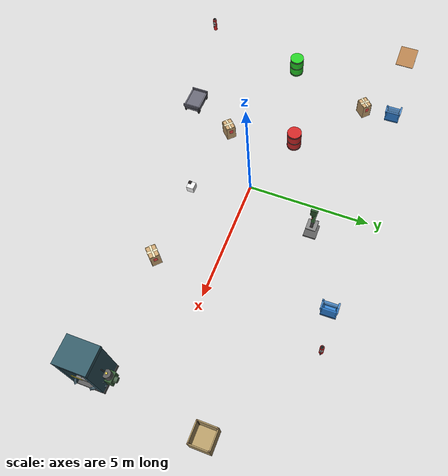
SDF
<sdf version="1.5">
 <world name="maiellomap">
  <physics name="default_physics" default="0" type="ode">
   <gravity>0 0 -9.8066</gravity>
   <ode>
    <solver>
     <type>quick</type>
     <iters>10</iters>
     <sor>1.3</sor>
     <use_dynamic_moi_rescaling>0</use_dynamic_moi_rescaling>
    </solver>
    <constraints>
     <cfm>0</cfm>
     <erp>0.2</erp>
     <contact_max_correcting_vel>100</contact_max_correcting_vel>
     <contact_surface_layer>0.001</contact_surface_layer>
    </constraints>
   </ode>
   <max_step_size>0.004</max_step_size>
   <real_time_factor>1</real_time_factor>
   <real_time_update_rate>250</real_time_update_rate>
   <magnetic_field>6.0e-6 2.3e-5 -4.2e-5</magnetic_field>
  </physics>
  <light type="directional" name="sun">
   <pose>0 0 10 0 0 0</pose>
   <diffuse>0.8 0.8 0.8 1</diffuse>
   <specular>0.2 0.2 0.2 1</specular>
   <attenuation>
    <range>1000</range>
    <constant>0.9</constant>
    <linear>0.01</linear>
    <quadratic>0.001</quadratic>
   </attenuation>
   <direction>-0.5 0.1 -0.9</direction>
  </light>
  <include><name>drill_press</name><pose>1.2 3 0.3 0 0 0</pose><uri>model://drill_press</uri></include>
  <include>
   <name>hydraulic_press</name>
   <pose>8.88 -2.3 0.2 0 0 -1.57</pose>
   <uri>model://hydraulic_press</uri>
  </include>
  <model name="aruco_cube">
   <static>false</static>
   <pose>1 -2.15 0.4 0 0 0</pose>
   <link name="cube_link">
    <inertial><mass>0.5</mass><inertia><ixx>0.01</ixx><iyy>0.01</iyy><izz>0.01</izz></inertia></inertial>
    <visual name="cube_visual">
     <geometry><box><size>0.3 0.3 0.3</size></box></geometry>
     <material>
      <diffuse>1 1 1 1</diffuse>
      <specular>0.4 0.4 0.4 1</specular>
      <pbr>
       <metal>
        <albedo_map>model://aruco_tag_1/aruco_tag_id10.png</albedo_map>
        <metalness>0.0</metalness>
        <roughness>0.8</roughness>
       </metal>
      </pbr>
     </material>
    </visual>
    <collision name="cube_collision"><geometry><box><size>0.3 0.3 0.3</size></box></geometry></collision>
   </link>
   <link name="button_base">
    <pose>-0.08 -0.08 0.18 0 0 0</pose>
    <inertial><mass>0.5</mass><inertia><ixx>0.001</ixx><iyy>0.001</iyy><izz>0.001</izz></inertia></inertial>
    <visual name="back_panel">
     <geometry><box><size>0.12 0.12 0.04</size></box></geometry>
     <material><ambient>0.25 0.25 0.25 1</ambient><diffuse>0.35 0.35 0.35 1</diffuse></material>
    </visual>
    <visual name="support_ring">
     <pose>0 0 0.03 0 0 0</pose>
     <geometry><cylinder><radius>0.045</radius><length>0.02</length></cylinder></geometry>
     <material><ambient>0.2 0.2 0.2 1</ambient><diffuse>0.3 0.3 0.3 1</diffuse></material>
    </visual>
    <collision name="base_collision"><geometry><box><size>0.12 0.12 0.04</size></box></geometry></collision>
   </link>
   <link name="button_top">
    <pose>-0.08 -0.08 0.235 0 0 0</pose>
    <inertial><mass>0.2</mass><inertia><ixx>0.0001</ixx><iyy>0.0001</iyy><izz>0.0001</izz></inertia></inertial>
    <visual name="button_head">
     <geometry><cylinder><radius>0.04</radius><length>0.025</length></cylinder></geometry>
     <material>
      <ambient>0.9 0.2 0.2 1</ambient>
      <diffuse>1.0 0.25 0.25 1</diffuse>
      <emissive>0.3 0.05 0.05 1</emissive>
     </material>
    </visual>
    <visual name="button_edge">
     <pose>0 0 0.013 0 0 0</pose>
     <geometry><cylinder><radius>0.041</radius><length>0.001</length></cylinder></geometry>
     <material><ambient>0.1 0.1 0.1 1</ambient><diffuse>0.15 0.15 0.15 1</diffuse></material>
    </visual>
    <collision name="button_collision">
     <geometry><cylinder><radius>0.04</radius><length>0.025</length></cylinder></geometry>
     <surface>
      <contact><ode><kp>100000</kp><kd>100</kd><max_vel>0.1</max_vel><min_depth>0.001</min_depth></ode></contact>
      <friction><ode><mu>0.8</mu><mu2>0.8</mu2></ode></friction>
     </surface>
    </collision>
    <sensor name="button_touch_sensor" type="contact">
     <contact><collision>button_collision</collision></contact>
     <update_rate>50</update_rate>
     <always_on>true</always_on>
    </sensor>
   </link>
   <link name="led">
    <pose>-0.025 -0.08 0.245 0 0 0</pose>
    <inertial>
     <mass>0.001</mass>
     <inertia><ixx>0.000001</ixx><iyy>0.000001</iyy><izz>0.000001</izz></inertia>
    </inertial>
    <visual name="led_visual">
     <geometry><sphere><radius>0.006</radius></sphere></geometry>
     <material>
      <ambient>0.1 0.1 0.1 1</ambient>
      <diffuse>0.2 0.2 0.2 1</diffuse>
      <emissive>0 0 0 1</emissive>
     </material>
    </visual>
   </link>
   <joint name="cube_to_button_base" type="fixed"><parent>cube_link</parent><child>button_base</child></joint>
   <joint name="button_joint" type="prismatic">
    <parent>button_base</parent>
    <child>button_top</child>
    <axis>
     <xyz>0 0 1</xyz>
     <limit><lower>0</lower><upper>0.012</upper><effort>150</effort><velocity>0.3</velocity></limit>
     <dynamics>
      <spring_reference>0.012</spring_reference>
      <spring_stiffness>800</spring_stiffness>
      <damping>30</damping>
     </dynamics>
    </axis>
    <physics><ode><cfm>0.0</cfm><erp>0.2</erp></ode></physics>
   </joint>
   <joint name="led_joint" type="fixed"><parent>button_base</parent><child>led</child></joint>
   <plugin filename="libgz-sim-joint-state-publisher-system.so" name="gz::sim::systems::JointStatePublisher">
    <joint_name>button_joint</joint_name>
    <topic>/aruco_cube_button/joint_states</topic>
    <update_rate>50</update_rate>
   </plugin>
  </model>
  <model name="industrial_pallet">
   <pose>-9 4.42 0.1 0 0 0</pose>
   <static>false</static>
   <link name="top_deck">
    <pose>0 0 0.065 0 0 0</pose>
    <inertial><mass>5.0</mass><inertia><ixx>0.5</ixx><iyy>0.5</iyy><izz>0.8</izz></inertia></inertial>
    <visual name="top_visual">
     <geometry><box><size>1.2 0.8 0.02</size></box></geometry>
     <material><ambient>0.6 0.4 0.2 1</ambient><diffuse>0.7 0.5 0.3 1</diffuse></material>
    </visual>
    <collision name="top_collision"><geometry><box><size>1.2 0.8 0.02</size></box></geometry></collision>
   </link>
   <link name="beam1">
    <pose>-0.4 0 0.03 0 0 0</pose>
    <inertial><mass>1.0</mass><inertia><ixx>0.05</ixx><iyy>0.05</iyy><izz>0.05</izz></inertia></inertial>
    <visual name="beam1_visual">
     <geometry><box><size>0.1 0.8 0.06</size></box></geometry>
     <material><ambient>0.5 0.35 0.15 1</ambient><diffuse>0.6 0.4 0.2 1</diffuse></material>
    </visual>
    <collision name="beam1_collision"><geometry><box><size>0.1 0.8 0.06</size></box></geometry></collision>
   </link>
   <link name="beam2">
    <pose>0 0 0.03 0 0 0</pose>
    <inertial><mass>1.0</mass><inertia><ixx>0.05</ixx><iyy>0.05</iyy><izz>0.05</izz></inertia></inertial>
    <visual name="beam2_visual">
     <geometry><box><size>0.1 0.8 0.06</size></box></geometry>
     <material><ambient>0.5 0.35 0.15 1</ambient><diffuse>0.6 0.4 0.2 1</diffuse></material>
    </visual>
    <collision name="beam2_collision"><geometry><box><size>0.1 0.8 0.06</size></box></geometry></collision>
   </link>
   <link name="beam3">
    <pose>0.4 0 0.03 0 0 0</pose>
    <inertial><mass>1.0</mass><inertia><ixx>0.05</ixx><iyy>0.05</iyy><izz>0.05</izz></inertia></inertial>
    <visual name="beam3_visual">
     <geometry><box><size>0.1 0.8 0.06</size></box></geometry>
     <material><ambient>0.5 0.35 0.15 1</ambient><diffuse>0.6 0.4 0.2 1</diffuse></material>
    </visual>
    <collision name="beam3_collision"><geometry><box><size>0.1 0.8 0.06</size></box></geometry></collision>
   </link>
   <joint name="beam1_to_top" type="fixed"><parent>top_deck</parent><child>beam1</child></joint>
   <joint name="beam2_to_top" type="fixed"><parent>top_deck</parent><child>beam2</child></joint>
   <joint name="beam3_to_top" type="fixed"><parent>top_deck</parent><child>beam3</child></joint>
  </model>
  <model name="industrial_barrel">
   <pose>-2.61 1.0 0.45 0 0 0</pose>
   <static>false</static>
   <link name="barrel_body">
    <inertial><mass>8.0</mass><inertia><ixx>0.5</ixx><iyy>0.5</iyy><izz>0.2</izz></inertia></inertial>
    <visual name="barrel_visual">
     <geometry><cylinder><radius>0.3</radius><length>0.9</length></cylinder></geometry>
     <material><ambient>0.7 0.1 0.1 1</ambient><diffuse>0.8 0.15 0.15 1</diffuse></material>
    </visual>
    <collision name="barrel_collision">
     <geometry><cylinder><radius>0.3</radius><length>0.9</length></cylinder></geometry>
     <surface><friction><ode><mu>1.0</mu><mu2>1.0</mu2></ode></friction></surface>
    </collision>
    <visual name="ring_top">
     <pose>0 0 0.38 0 0 0</pose>
     <geometry><cylinder><radius>0.305</radius><length>0.04</length></cylinder></geometry>
     <material><ambient>0.3 0.3 0.3 1</ambient><diffuse>0.4 0.4 0.4 1</diffuse></material>
    </visual>
    <visual name="ring_middle">
     <geometry><cylinder><radius>0.305</radius><length>0.04</length></cylinder></geometry>
     <material><ambient>0.3 0.3 0.3 1</ambient><diffuse>0.4 0.4 0.4 1</diffuse></material>
    </visual>
    <visual name="ring_bottom">
     <pose>0 0 -0.38 0 0 0</pose>
     <geometry><cylinder><radius>0.305</radius><length>0.04</length></cylinder></geometry>
     <material><ambient>0.3 0.3 0.3 1</ambient><diffuse>0.4 0.4 0.4 1</diffuse></material>
    </visual>
   </link>
  </model>
  <model name="industrial_barrel_2">
   <pose>-6.56 -0.21 0.45 0 0 0</pose>
   <static>false</static>
   <link name="barrel_body">
    <inertial><mass>8.0</mass><inertia><ixx>0.5</ixx><iyy>0.5</iyy><izz>0.2</izz></inertia></inertial>
    <visual name="barrel_visual">
     <geometry><cylinder><radius>0.3</radius><length>0.9</length></cylinder></geometry>
     <material><ambient>0.1 0.7 0.1 1</ambient><diffuse>0.15 0.8 0.15 1</diffuse></material>
    </visual>
    <collision name="barrel_collision">
     <geometry><cylinder><radius>0.3</radius><length>0.9</length></cylinder></geometry>
     <surface><friction><ode><mu>1.0</mu><mu2>1.0</mu2></ode></friction></surface>
    </collision>
    <visual name="ring_top">
     <pose>0 0 0.38 0 0 0</pose>
     <geometry><cylinder><radius>0.305</radius><length>0.04</length></cylinder></geometry>
     <material><ambient>0.3 0.3 0.3 1</ambient><diffuse>0.4 0.4 0.4 1</diffuse></material>
    </visual>
    <visual name="ring_middle">
     <geometry><cylinder><radius>0.305</radius><length>0.04</length></cylinder></geometry>
     <material><ambient>0.3 0.3 0.3 1</ambient><diffuse>0.4 0.4 0.4 1</diffuse></material>
    </visual>
    <visual name="ring_bottom">
     <pose>0 0 -0.38 0 0 0</pose>
     <geometry><cylinder><radius>0.305</radius><length>0.04</length></cylinder></geometry>
     <material><ambient>0.3 0.3 0.3 1</ambient><diffuse>0.4 0.4 0.4 1</diffuse></material>
    </visual>
   </link>
  </model>
  <model name="shipping_crate">
   <pose>9.54 2.04 0.4 0 0 3.14</pose>
   <static>false</static>
   <link name="crate_base">
    <inertial><mass>12.0</mass><inertia><ixx>1.2</ixx><iyy>1.2</iyy><izz>1.5</izz></inertia></inertial>
    <visual name="bottom_panel">
     <pose>0 0 -0.38 0 0 0</pose>
     <geometry><box><size>0.8 0.8 0.04</size></box></geometry>
     <material><ambient>0.6 0.5 0.3 1</ambient><diffuse>0.7 0.6 0.4 1</diffuse></material>
    </visual>
    <visual name="side1_panel">
     <pose>0.38 0 0 0 0 0</pose>
     <geometry><box><size>0.04 0.8 0.8</size></box></geometry>
     <material><ambient>0.6 0.5 0.3 1</ambient><diffuse>0.7 0.6 0.4 1</diffuse></material>
    </visual>
    <visual name="side2_panel">
     <pose>-0.38 0 0 0 0 0</pose>
     <geometry><box><size>0.04 0.8 0.8</size></box></geometry>
     <material><ambient>0.6 0.5 0.3 1</ambient><diffuse>0.7 0.6 0.4 1</diffuse></material>
    </visual>
    <visual name="side3_panel">
     <pose>0 0.38 0 0 0 0</pose>
     <geometry><box><size>0.8 0.04 0.8</size></box></geometry>
     <material><ambient>0.6 0.5 0.3 1</ambient><diffuse>0.7 0.6 0.4 1</diffuse></material>
    </visual>
    <visual name="side4_panel">
     <pose>0 -0.38 0 0 0 0</pose>
     <geometry><box><size>0.8 0.04 0.8</size></box></geometry>
     <material><ambient>0.6 0.5 0.3 1</ambient><diffuse>0.7 0.6 0.4 1</diffuse></material>
    </visual>
    <visual name="corner1">
     <pose>0.36 0.36 0 0 0 0</pose>
     <geometry><box><size>0.05 0.05 0.85</size></box></geometry>
     <material><ambient>0.4 0.3 0.2 1</ambient><diffuse>0.5 0.4 0.3 1</diffuse></material>
    </visual>
    <visual name="corner2">
     <pose>-0.36 0.36 0 0 0 0</pose>
     <geometry><box><size>0.05 0.05 0.85</size></box></geometry>
     <material><ambient>0.4 0.3 0.2 1</ambient><diffuse>0.5 0.4 0.3 1</diffuse></material>
    </visual>
    <visual name="corner3">
     <pose>0.36 -0.36 0 0 0 0</pose>
     <geometry><box><size>0.05 0.05 0.85</size></box></geometry>
     <material><ambient>0.4 0.3 0.2 1</ambient><diffuse>0.5 0.4 0.3 1</diffuse></material>
    </visual>
    <visual name="corner4">
     <pose>-0.36 -0.36 0 0 0 0</pose>
     <geometry><box><size>0.05 0.05 0.85</size></box></geometry>
     <material><ambient>0.4 0.3 0.2 1</ambient><diffuse>0.5 0.4 0.3 1</diffuse></material>
    </visual>
    <visual name="marking">
     <pose>0.39 0 0.1 0 1.5708 0</pose>
     <geometry><box><size>0.3 0.3 0.001</size></box></geometry>
     <material><ambient>0.1 0.1 0.1 1</ambient><diffuse>0.2 0.2 0.2 1</diffuse></material>
    </visual>
    <collision name="crate_collision">
     <geometry><box><size>0.8 0.8 0.8</size></box></geometry>
     <surface><friction><ode><mu>0.8</mu><mu2>0.8</mu2></ode></friction></surface>
    </collision>
   </link>
  </model>
  <model name="industrial_cart">
   <pose>-3.05 -3.69 0.3 0 0 0</pose>
   <static>false</static>
   <link name="cart_platform">
    <pose>0 0 0.3 0 0 0</pose>
    <inertial><mass>15.0</mass><inertia><ixx>1.5</ixx><iyy>2.0</iyy><izz>3.0</izz></inertia></inertial>
    <visual name="platform_top">
     <geometry><box><size>1.0 0.7 0.05</size></box></geometry>
     <material><ambient>0.3 0.3 0.35 1</ambient><diffuse>0.4 0.4 0.45 1</diffuse></material>
    </visual>
    <visual name="edge_front">
     <pose>0.475 0 0.05 0 0 0</pose>
     <geometry><box><size>0.05 0.7 0.15</size></box></geometry>
     <material><ambient>0.25 0.25 0.3 1</ambient><diffuse>0.35 0.35 0.4 1</diffuse></material>
    </visual>
    <visual name="edge_back">
     <pose>-0.475 0 0.05 0 0 0</pose>
     <geometry><box><size>0.05 0.7 0.15</size></box></geometry>
     <material><ambient>0.25 0.25 0.3 1</ambient><diffuse>0.35 0.35 0.4 1</diffuse></material>
    </visual>
    <visual name="leg_fl">
     <pose>0.45 0.3 -0.12 0 0 0</pose>
     <geometry><cylinder><radius>0.025</radius><length>0.36</length></cylinder></geometry>
     <material><ambient>0.2 0.2 0.2 1</ambient><diffuse>0.3 0.3 0.3 1</diffuse></material>
    </visual>
    <collision name="leg_fl_collision">
     <pose>0.45 0.3 -0.12 0 0 0</pose>
     <geometry><cylinder><radius>0.025</radius><length>0.36</length></cylinder></geometry>
    </collision>
    <visual name="leg_fr">
     <pose>0.45 -0.3 -0.12 0 0 0</pose>
     <geometry><cylinder><radius>0.025</radius><length>0.36</length></cylinder></geometry>
     <material><ambient>0.2 0.2 0.2 1</ambient><diffuse>0.3 0.3 0.3 1</diffuse></material>
    </visual>
    <collision name="leg_fr_collision">
     <pose>0.45 -0.3 -0.12 0 0 0</pose>
     <geometry><cylinder><radius>0.025</radius><length>0.36</length></cylinder></geometry>
    </collision>
    <visual name="leg_rl">
     <pose>-0.45 0.3 -0.12 0 0 0</pose>
     <geometry><cylinder><radius>0.025</radius><length>0.36</length></cylinder></geometry>
     <material><ambient>0.2 0.2 0.2 1</ambient><diffuse>0.3 0.3 0.3 1</diffuse></material>
    </visual>
    <collision name="leg_rl_collision">
     <pose>-0.45 0.3 -0.12 0 0 0</pose>
     <geometry><cylinder><radius>0.025</radius><length>0.36</length></cylinder></geometry>
    </collision>
    <visual name="leg_rr">
     <pose>-0.45 -0.3 -0.12 0 0 0</pose>
     <geometry><cylinder><radius>0.025</radius><length>0.36</length></cylinder></geometry>
     <material><ambient>0.2 0.2 0.2 1</ambient><diffuse>0.3 0.3 0.3 1</diffuse></material>
    </visual>
    <collision name="leg_rr_collision">
     <pose>-0.45 -0.3 -0.12 0 0 0</pose>
     <geometry><cylinder><radius>0.025</radius><length>0.36</length></cylinder></geometry>
    </collision>
    <visual name="side_panel_left">
     <pose>0 0.325 -0.05 0 0 0</pose>
     <geometry><box><size>0.9 0.05 0.2</size></box></geometry>
     <material><ambient>0.35 0.35 0.4 1</ambient><diffuse>0.45 0.45 0.5 1</diffuse></material>
    </visual>
    <collision name="side_panel_left_collision">
     <pose>0 0.325 -0.05 0 0 0</pose>
     <geometry><box><size>0.9 0.05 0.2</size></box></geometry>
    </collision>
    <visual name="side_panel_right">
     <pose>0 -0.325 -0.05 0 0 0</pose>
     <geometry><box><size>0.9 0.05 0.2</size></box></geometry>
     <material><ambient>0.35 0.35 0.4 1</ambient><diffuse>0.45 0.45 0.5 1</diffuse></material>
    </visual>
    <collision name="side_panel_right_collision">
     <pose>0 -0.325 -0.05 0 0 0</pose>
     <geometry><box><size>0.9 0.05 0.2</size></box></geometry>
    </collision>
    <visual name="crossbar_front">
     <pose>0.475 0 -0.05 0 0 0</pose>
     <geometry><box><size>0.03 0.6 0.2</size></box></geometry>
     <material><ambient>0.3 0.3 0.35 1</ambient><diffuse>0.4 0.4 0.45 1</diffuse></material>
    </visual>
    <collision name="crossbar_front_collision">
     <pose>0.475 0 -0.05 0 0 0</pose>
     <geometry><box><size>0.03 0.6 0.2</size></box></geometry>
    </collision>
    <visual name="crossbar_back">
     <pose>-0.475 0 -0.05 0 0 0</pose>
     <geometry><box><size>0.03 0.6 0.2</size></box></geometry>
     <material><ambient>0.3 0.3 0.35 1</ambient><diffuse>0.4 0.4 0.45 1</diffuse></material>
    </visual>
    <collision name="crossbar_back_collision">
     <pose>-0.475 0 -0.05 0 0 0</pose>
     <geometry><box><size>0.03 0.6 0.2</size></box></geometry>
    </collision>
    <visual name="center_support">
     <pose>0 0 -0.27 0 0 0</pose>
     <geometry><box><size>0.8 0.6 0.03</size></box></geometry>
     <material><ambient>0.25 0.25 0.3 1</ambient><diffuse>0.35 0.35 0.4 1</diffuse></material>
    </visual>
    <collision name="platform_collision">
     <geometry><box><size>1.0 0.7 0.05</size></box></geometry>
     <surface><friction><ode><mu>0.9</mu><mu2>0.9</mu2></ode></friction></surface>
    </collision>
   </link>
   <link name="wheel_fl">
    <pose>0.4 0.3 0.08 1.5708 0 0</pose>
    <inertial><mass>1.0</mass><inertia><ixx>0.005</ixx><iyy>0.005</iyy><izz>0.008</izz></inertia></inertial>
    <visual name="wheel_fl_visual">
     <geometry><cylinder><radius>0.08</radius><length>0.06</length></cylinder></geometry>
     <material><ambient>0.2 0.2 0.2 1</ambient><diffuse>0.3 0.3 0.3 1</diffuse></material>
    </visual>
    <collision name="wheel_fl_collision">
     <geometry><cylinder><radius>0.08</radius><length>0.06</length></cylinder></geometry>
     <surface><friction><ode><mu>1.5</mu><mu2>1.5</mu2></ode></friction></surface>
    </collision>
   </link>
   <link name="wheel_fr">
    <pose>0.4 -0.3 0.08 1.5708 0 0</pose>
    <inertial><mass>1.0</mass><inertia><ixx>0.005</ixx><iyy>0.005</iyy><izz>0.008</izz></inertia></inertial>
    <visual name="wheel_fr_visual">
     <geometry><cylinder><radius>0.08</radius><length>0.06</length></cylinder></geometry>
     <material><ambient>0.2 0.2 0.2 1</ambient><diffuse>0.3 0.3 0.3 1</diffuse></material>
    </visual>
    <collision name="wheel_fr_collision">
     <geometry><cylinder><radius>0.08</radius><length>0.06</length></cylinder></geometry>
     <surface><friction><ode><mu>1.5</mu><mu2>1.5</mu2></ode></friction></surface>
    </collision>
   </link>
   <link name="wheel_rl">
    <pose>-0.4 0.3 0.08 1.5708 0 0</pose>
    <inertial><mass>1.0</mass><inertia><ixx>0.005</ixx><iyy>0.005</iyy><izz>0.008</izz></inertia></inertial>
    <visual name="wheel_rl_visual">
     <geometry><cylinder><radius>0.08</radius><length>0.06</length></cylinder></geometry>
     <material><ambient>0.2 0.2 0.2 1</ambient><diffuse>0.3 0.3 0.3 1</diffuse></material>
    </visual>
    <collision name="wheel_rl_collision">
     <geometry><cylinder><radius>0.08</radius><length>0.06</length></cylinder></geometry>
     <surface><friction><ode><mu>1.5</mu><mu2>1.5</mu2></ode></friction></surface>
    </collision>
   </link>
   <link name="wheel_rr">
    <pose>-0.4 -0.3 0.08 1.5708 0 0</pose>
    <inertial><mass>1.0</mass><inertia><ixx>0.005</ixx><iyy>0.005</iyy><izz>0.008</izz></inertia></inertial>
    <visual name="wheel_rr_visual">
     <geometry><cylinder><radius>0.08</radius><length>0.06</length></cylinder></geometry>
     <material><ambient>0.2 0.2 0.2 1</ambient><diffuse>0.3 0.3 0.3 1</diffuse></material>
    </visual>
    <collision name="wheel_rr_collision">
     <geometry><cylinder><radius>0.08</radius><length>0.06</length></cylinder></geometry>
     <surface><friction><ode><mu>1.5</mu><mu2>1.5</mu2></ode></friction></surface>
    </collision>
   </link>
   <joint name="wheel_fl_joint" type="revolute">
    <parent>cart_platform</parent>
    <child>wheel_fl</child>
    <axis><xyz>0 1 0</xyz><limit><lower>-1e16</lower><upper>1e16</upper></limit></axis>
   </joint>
   <joint name="wheel_fr_joint" type="revolute">
    <parent>cart_platform</parent>
    <child>wheel_fr</child>
    <axis><xyz>0 1 0</xyz><limit><lower>-1e16</lower><upper>1e16</upper></limit></axis>
   </joint>
   <joint name="wheel_rl_joint" type="revolute">
    <parent>cart_platform</parent>
    <child>wheel_rl</child>
    <axis><xyz>0 1 0</xyz><limit><lower>-1e16</lower><upper>1e16</upper></limit></axis>
   </joint>
   <joint name="wheel_rr_joint" type="revolute">
    <parent>cart_platform</parent>
    <child>wheel_rr</child>
    <axis><xyz>0 1 0</xyz><limit><lower>-1e16</lower><upper>1e16</upper></limit></axis>
   </joint>
  </model>
  <model name="fire_extinguisher">
   <pose>5.5 4.77 0.3 0 0 0</pose>
   <static>false</static>
   <link name="extinguisher_body">
    <inertial><mass>5.0</mass><inertia><ixx>0.15</ixx><iyy>0.15</iyy><izz>0.05</izz></inertia></inertial>
    <visual name="main_cylinder">
     <geometry><cylinder><radius>0.08</radius><length>0.6</length></cylinder></geometry>
     <material><ambient>0.8 0.1 0.1 1</ambient><diffuse>0.9 0.15 0.15 1</diffuse></material>
    </visual>
    <visual name="top_part">
     <pose>0 0 0.32 0 0 0</pose>
     <geometry><cylinder><radius>0.06</radius><length>0.04</length></cylinder></geometry>
     <material><ambient>0.1 0.1 0.1 1</ambient><diffuse>0.15 0.15 0.15 1</diffuse></material>
    </visual>
    <visual name="valve">
     <pose>0.04 0 0.38 0 1.5708 0</pose>
     <geometry><cylinder><radius>0.02</radius><length>0.08</length></cylinder></geometry>
     <material><ambient>0.1 0.1 0.1 1</ambient><diffuse>0.2 0.2 0.2 1</diffuse></material>
    </visual>
    <visual name="gauge">
     <pose>-0.04 0 0.36 0 1.5708 0</pose>
     <geometry><cylinder><radius>0.025</radius><length>0.01</length></cylinder></geometry>
     <material><ambient>0.9 0.9 0.9 1</ambient><diffuse>0.95 0.95 0.95 1</diffuse></material>
    </visual>
    <visual name="hose">
     <pose>0.06 0 0.15 0 0.5 0</pose>
     <geometry><cylinder><radius>0.01</radius><length>0.35</length></cylinder></geometry>
     <material><ambient>0.1 0.1 0.1 1</ambient><diffuse>0.15 0.15 0.15 1</diffuse></material>
    </visual>
    <visual name="nozzle">
     <pose>0.15 0 0 0 1.5708 0</pose>
     <geometry><cylinder><radius>0.015</radius><length>0.08</length></cylinder></geometry>
     <material><ambient>0.2 0.2 0.2 1</ambient><diffuse>0.3 0.3 0.3 1</diffuse></material>
    </visual>
    <visual name="label">
     <pose>0.081 0 0.1 0 1.5708 0</pose>
     <geometry><box><size>0.25 0.12 0.001</size></box></geometry>
     <material><ambient>0.9 0.9 0.9 1</ambient><diffuse>0.95 0.95 0.95 1</diffuse></material>
    </visual>
    <visual name="label_stripe">
     <pose>0.082 0 0.08 0 1.5708 0</pose>
     <geometry><box><size>0.08 0.12 0.001</size></box></geometry>
     <material><ambient>0.1 0.1 0.1 1</ambient><diffuse>0.15 0.15 0.15 1</diffuse></material>
    </visual>
    <collision name="extinguisher_collision">
     <geometry><cylinder><radius>0.08</radius><length>0.6</length></cylinder></geometry>
     <surface><friction><ode><mu>0.8</mu><mu2>0.8</mu2></ode></friction></surface>
    </collision>
   </link>
  </model>
  <model name="fire_extinguisher_2">
   <pose>-7.8 -4.77 0.3 0 0 0</pose>
   <static>false</static>
   <link name="extinguisher_body">
    <inertial><mass>5.0</mass><inertia><ixx>0.15</ixx><iyy>0.15</iyy><izz>0.05</izz></inertia></inertial>
    <visual name="main_cylinder">
     <geometry><cylinder><radius>0.08</radius><length>0.6</length></cylinder></geometry>
     <material><ambient>0.8 0.1 0.1 1</ambient><diffuse>0.9 0.15 0.15 1</diffuse></material>
    </visual>
    <visual name="top_part">
     <pose>0 0 0.32 0 0 0</pose>
     <geometry><cylinder><radius>0.06</radius><length>0.04</length></cylinder></geometry>
     <material><ambient>0.1 0.1 0.1 1</ambient><diffuse>0.15 0.15 0.15 1</diffuse></material>
    </visual>
    <visual name="valve">
     <pose>0.04 0 0.38 0 1.5708 0</pose>
     <geometry><cylinder><radius>0.02</radius><length>0.08</length></cylinder></geometry>
     <material><ambient>0.1 0.1 0.1 1</ambient><diffuse>0.2 0.2 0.2 1</diffuse></material>
    </visual>
    <visual name="gauge">
     <pose>-0.04 0 0.36 0 1.5708 0</pose>
     <geometry><cylinder><radius>0.025</radius><length>0.01</length></cylinder></geometry>
     <material><ambient>0.9 0.9 0.9 1</ambient><diffuse>0.95 0.95 0.95 1</diffuse></material>
    </visual>
    <visual name="hose">
     <pose>0.06 0 0.15 0 0.5 0</pose>
     <geometry><cylinder><radius>0.01</radius><length>0.35</length></cylinder></geometry>
     <material><ambient>0.1 0.1 0.1 1</ambient><diffuse>0.15 0.15 0.15 1</diffuse></material>
    </visual>
    <visual name="nozzle">
     <pose>0.15 0 0 0 1.5708 0</pose>
     <geometry><cylinder><radius>0.015</radius><length>0.08</length></cylinder></geometry>
     <material><ambient>0.2 0.2 0.2 1</ambient><diffuse>0.3 0.3 0.3 1</diffuse></material>
    </visual>
    <visual name="label">
     <pose>0.081 0 0.1 0 1.5708 0</pose>
     <geometry><box><size>0.25 0.12 0.001</size></box></geometry>
     <material><ambient>0.9 0.9 0.9 1</ambient><diffuse>0.95 0.95 0.95 1</diffuse></material>
    </visual>
    <visual name="label_stripe">
     <pose>0.082 0 0.08 0 1.5708 0</pose>
     <geometry><box><size>0.08 0.12 0.001</size></box></geometry>
     <material><ambient>0.1 0.1 0.1 1</ambient><diffuse>0.15 0.15 0.15 1</diffuse></material>
    </visual>
    <collision name="extinguisher_collision">
     <geometry><cylinder><radius>0.08</radius><length>0.6</length></cylinder></geometry>
     <surface><friction><ode><mu>0.8</mu><mu2>0.8</mu2></ode></friction></surface>
    </collision>
   </link>
  </model>
  <model name="cardboard_box">
   <pose>-5.5 3.3 0.1 0 0 0.8</pose>
   <static>false</static>
   <link name="box_body">
    <inertial><mass>2.0</mass><inertia><ixx>0.15</ixx><iyy>0.15</iyy><izz>0.2</izz></inertia></inertial>
    <visual name="main_box">
     <geometry><box><size>0.5 0.4 0.7</size></box></geometry>
     <material><ambient>0.7 0.6 0.4 1</ambient><diffuse>0.8 0.65 0.45 1</diffuse></material>
    </visual>
    <visual name="fold_line1">
     <pose>0.24 0 0 0 0 0</pose>
     <geometry><box><size>0.015 0.4 0.71</size></box></geometry>
     <material><ambient>0.6 0.5 0.3 1</ambient><diffuse>0.65 0.55 0.35 1</diffuse></material>
    </visual>
    <visual name="fold_line2">
     <pose>-0.24 0 0 0 0 0</pose>
     <geometry><box><size>0.015 0.4 0.71</size></box></geometry>
     <material><ambient>0.6 0.5 0.3 1</ambient><diffuse>0.65 0.55 0.35 1</diffuse></material>
    </visual>
    <visual name="fold_line3">
     <pose>0 0.19 0 0 0 0</pose>
     <geometry><box><size>0.5 0.015 0.71</size></box></geometry>
     <material><ambient>0.6 0.5 0.3 1</ambient><diffuse>0.65 0.55 0.35 1</diffuse></material>
    </visual>
    <visual name="fold_line4">
     <pose>0 -0.19 0 0 0 0</pose>
     <geometry><box><size>0.5 0.015 0.71</size></box></geometry>
     <material><ambient>0.6 0.5 0.3 1</ambient><diffuse>0.65 0.55 0.35 1</diffuse></material>
    </visual>
    <visual name="tape_h">
     <pose>0 0 0.36 0 0 0</pose>
     <geometry><box><size>0.52 0.08 0.002</size></box></geometry>
     <material><ambient>0.9 0.85 0.7 1</ambient><diffuse>0.95 0.9 0.75 1</diffuse></material>
    </visual>
    <visual name="tape_v">
     <pose>0 0 0.36 0 0 0</pose>
     <geometry><box><size>0.08 0.42 0.002</size></box></geometry>
     <material><ambient>0.9 0.85 0.7 1</ambient><diffuse>0.95 0.9 0.75 1</diffuse></material>
    </visual>
    <visual name="label">
     <pose>0.251 0 0.1 0 1.5708 0</pose>
     <geometry><box><size>0.2 0.15 0.001</size></box></geometry>
     <material><ambient>1 0.2 0.2 1</ambient><diffuse>1 0.3 0.3 1</diffuse></material>
    </visual>
    <collision name="box_collision">
     <geometry><box><size>0.5 0.4 0.7</size></box></geometry>
     <surface><friction><ode><mu>0.7</mu><mu2>0.7</mu2></ode></friction></surface>
    </collision>
   </link>
  </model>
  <model name="cardboard_box_2">
   <pose>4.23 -2.3 0.35 0 0 0.8</pose>
   <static>false</static>
   <link name="box_body">
    <inertial><mass>2.0</mass><inertia><ixx>0.15</ixx><iyy>0.15</iyy><izz>0.2</izz></inertia></inertial>
    <visual name="main_box">
     <geometry><box><size>0.5 0.4 0.7</size></box></geometry>
     <material><ambient>0.7 0.6 0.4 1</ambient><diffuse>0.8 0.65 0.45 1</diffuse></material>
    </visual>
    <visual name="fold_line1">
     <pose>0.24 0 0 0 0 0</pose>
     <geometry><box><size>0.015 0.4 0.71</size></box></geometry>
     <material><ambient>0.6 0.5 0.3 1</ambient><diffuse>0.65 0.55 0.35 1</diffuse></material>
    </visual>
    <visual name="fold_line2">
     <pose>-0.24 0 0 0 0 0</pose>
     <geometry><box><size>0.015 0.4 0.71</size></box></geometry>
     <material><ambient>0.6 0.5 0.3 1</ambient><diffuse>0.65 0.55 0.35 1</diffuse></material>
    </visual>
    <visual name="fold_line3">
     <pose>0 0.19 0 0 0 0</pose>
     <geometry><box><size>0.5 0.015 0.71</size></box></geometry>
     <material><ambient>0.6 0.5 0.3 1</ambient><diffuse>0.65 0.55 0.35 1</diffuse></material>
    </visual>
    <visual name="fold_line4">
     <pose>0 -0.19 0 0 0 0</pose>
     <geometry><box><size>0.5 0.015 0.71</size></box></geometry>
     <material><ambient>0.6 0.5 0.3 1</ambient><diffuse>0.65 0.55 0.35 1</diffuse></material>
    </visual>
    <visual name="tape_h">
     <pose>0 0 0.36 0 0 0</pose>
     <geometry><box><size>0.52 0.08 0.002</size></box></geometry>
     <material><ambient>0.9 0.85 0.7 1</ambient><diffuse>0.95 0.9 0.75 1</diffuse></material>
    </visual>
    <visual name="tape_v">
     <pose>0 0 0.36 0 0 0</pose>
     <geometry><box><size>0.08 0.42 0.002</size></box></geometry>
     <material><ambient>0.9 0.85 0.7 1</ambient><diffuse>0.95 0.9 0.75 1</diffuse></material>
    </visual>
    <visual name="label">
     <pose>0.251 0 0.1 0 1.5708 0</pose>
     <geometry><box><size>0.2 0.15 0.001</size></box></geometry>
     <material><ambient>1 0.2 0.2 1</ambient><diffuse>1 0.3 0.3 1</diffuse></material>
    </visual>
    <collision name="box_collision">
     <geometry><box><size>0.5 0.4 0.7</size></box></geometry>
     <surface><friction><ode><mu>0.7</mu><mu2>0.7</mu2></ode></friction></surface>
    </collision>
   </link>
  </model>
  <model name="cardboard_box_3">
   <pose>-2.38 -1.89 0.1 0 0 0.8</pose>
   <static>false</static>
   <link name="box_body">
    <inertial><mass>2.0</mass><inertia><ixx>0.15</ixx><iyy>0.15</iyy><izz>0.2</izz></inertia></inertial>
    <visual name="main_box">
     <geometry><box><size>0.5 0.4 0.7</size></box></geometry>
     <material><ambient>0.7 0.6 0.4 1</ambient><diffuse>0.8 0.65 0.45 1</diffuse></material>
    </visual>
    <visual name="fold_line1">
     <pose>0.24 0 0 0 0 0</pose>
     <geometry><box><size>0.015 0.4 0.71</size></box></geometry>
     <material><ambient>0.6 0.5 0.3 1</ambient><diffuse>0.65 0.55 0.35 1</diffuse></material>
    </visual>
    <visual name="fold_line2">
     <pose>-0.24 0 0 0 0 0</pose>
     <geometry><box><size>0.015 0.4 0.71</size></box></geometry>
     <material><ambient>0.6 0.5 0.3 1</ambient><diffuse>0.65 0.55 0.35 1</diffuse></material>
    </visual>
    <visual name="fold_line3">
     <pose>0 0.19 0 0 0 0</pose>
     <geometry><box><size>0.5 0.015 0.71</size></box></geometry>
     <material><ambient>0.6 0.5 0.3 1</ambient><diffuse>0.65 0.55 0.35 1</diffuse></material>
    </visual>
    <visual name="fold_line4">
     <pose>0 -0.19 0 0 0 0</pose>
     <geometry><box><size>0.5 0.015 0.71</size></box></geometry>
     <material><ambient>0.6 0.5 0.3 1</ambient><diffuse>0.65 0.55 0.35 1</diffuse></material>
    </visual>
    <visual name="tape_h">
     <pose>0 0 0.36 0 0 0</pose>
     <geometry><box><size>0.52 0.08 0.002</size></box></geometry>
     <material><ambient>0.9 0.85 0.7 1</ambient><diffuse>0.95 0.9 0.75 1</diffuse></material>
    </visual>
    <visual name="tape_v">
     <pose>0 0 0.36 0 0 0</pose>
     <geometry><box><size>0.08 0.42 0.002</size></box></geometry>
     <material><ambient>0.9 0.85 0.7 1</ambient><diffuse>0.95 0.9 0.75 1</diffuse></material>
    </visual>
    <visual name="label">
     <pose>0.251 0 0.1 0 1.5708 0</pose>
     <geometry><box><size>0.2 0.15 0.001</size></box></geometry>
     <material><ambient>1 0.2 0.2 1</ambient><diffuse>1 0.3 0.3 1</diffuse></material>
    </visual>
    <collision name="box_collision">
     <geometry><box><size>0.5 0.4 0.7</size></box></geometry>
     <surface><friction><ode><mu>0.7</mu><mu2>0.7</mu2></ode></friction></surface>
    </collision>
   </link>
  </model>
  <model name="plastic_bin">
   <pose>-5.42 4.60 0.25 0 0 -1.55</pose>
   <static>false</static>
   <link name="bin_body">
    <inertial><mass>3.0</mass><inertia><ixx>0.3</ixx><iyy>0.3</iyy><izz>0.4</izz></inertia></inertial>
    <visual name="base">
     <pose>0 0 -0.2 0 0 0</pose>
     <geometry><box><size>0.6 0.4 0.06</size></box></geometry>
     <material><ambient>0.1 0.4 0.7 1</ambient><diffuse>0.2 0.5 0.8 1</diffuse></material>
    </visual>
    <visual name="front_wall">
     <pose>0.27 0 0.05 0 0.15 0</pose>
     <geometry><box><size>0.06 0.4 0.5</size></box></geometry>
     <material><ambient>0.1 0.4 0.7 0.8</ambient><diffuse>0.2 0.5 0.8 0.8</diffuse></material>
    </visual>
    <visual name="back_wall">
     <pose>-0.27 0 0.1 0 -0.1 0</pose>
     <geometry><box><size>0.06 0.4 0.6</size></box></geometry>
     <material><ambient>0.1 0.4 0.7 0.8</ambient><diffuse>0.2 0.5 0.8 0.8</diffuse></material>
    </visual>
    <visual name="left_wall">
     <pose>0 0.17 0.05 0.15 0 0</pose>
     <geometry><box><size>0.6 0.06 0.5</size></box></geometry>
     <material><ambient>0.1 0.4 0.7 0.8</ambient><diffuse>0.2 0.5 0.8 0.8</diffuse></material>
    </visual>
    <visual name="right_wall">
     <pose>0 -0.17 0.05 -0.15 0 0</pose>
     <geometry><box><size>0.6 0.06 0.5</size></box></geometry>
     <material><ambient>0.1 0.4 0.7 0.8</ambient><diffuse>0.2 0.5 0.8 0.8</diffuse></material>
    </visual>
    <visual name="handle1">
     <pose>0.3 0.15 0.25 0 1.5708 0</pose>
     <geometry><cylinder><radius>0.015</radius><length>0.08</length></cylinder></geometry>
     <material><ambient>0.05 0.3 0.6 1</ambient><diffuse>0.1 0.4 0.7 1</diffuse></material>
    </visual>
    <visual name="handle2">
     <pose>0.3 -0.15 0.25 0 1.5708 0</pose>
     <geometry><cylinder><radius>0.015</radius><length>0.08</length></cylinder></geometry>
     <material><ambient>0.05 0.3 0.6 1</ambient><diffuse>0.1 0.4 0.7 1</diffuse></material>
    </visual>
    <collision name="bin_collision">
     <geometry><box><size>0.6 0.4 0.5</size></box></geometry>
     <surface><friction><ode><mu>0.6</mu><mu2>0.6</mu2></ode></friction></surface>
    </collision>
   </link>
  </model>
  <model name="plastic_bin_2">
   <pose>3.98 4.60 0.25 0 0 -1.55</pose>
   <static>false</static>
   <link name="bin_body">
    <inertial><mass>3.0</mass><inertia><ixx>0.3</ixx><iyy>0.3</iyy><izz>0.4</izz></inertia></inertial>
    <visual name="base">
     <pose>0 0 -0.2 0 0 0</pose>
     <geometry><box><size>0.6 0.4 0.06</size></box></geometry>
     <material><ambient>0.1 0.4 0.7 1</ambient><diffuse>0.2 0.5 0.8 1</diffuse></material>
    </visual>
    <visual name="front_wall">
     <pose>0.27 0 0.05 0 0.15 0</pose>
     <geometry><box><size>0.06 0.4 0.5</size></box></geometry>
     <material><ambient>0.1 0.4 0.7 0.8</ambient><diffuse>0.2 0.5 0.8 0.8</diffuse></material>
    </visual>
    <visual name="back_wall">
     <pose>-0.27 0 0.1 0 -0.1 0</pose>
     <geometry><box><size>0.06 0.4 0.6</size></box></geometry>
     <material><ambient>0.1 0.4 0.7 0.8</ambient><diffuse>0.2 0.5 0.8 0.8</diffuse></material>
    </visual>
    <visual name="left_wall">
     <pose>0 0.17 0.05 0.15 0 0</pose>
     <geometry><box><size>0.6 0.06 0.5</size></box></geometry>
     <material><ambient>0.1 0.4 0.7 0.8</ambient><diffuse>0.2 0.5 0.8 0.8</diffuse></material>
    </visual>
    <visual name="right_wall">
     <pose>0 -0.17 0.05 -0.15 0 0</pose>
     <geometry><box><size>0.6 0.06 0.5</size></box></geometry>
     <material><ambient>0.1 0.4 0.7 0.8</ambient><diffuse>0.2 0.5 0.8 0.8</diffuse></material>
    </visual>
    <visual name="handle1">
     <pose>0.3 0.15 0.25 0 1.5708 0</pose>
     <geometry><cylinder><radius>0.015</radius><length>0.08</length></cylinder></geometry>
     <material><ambient>0.05 0.3 0.6 1</ambient><diffuse>0.1 0.4 0.7 1</diffuse></material>
    </visual>
    <visual name="handle2">
     <pose>0.3 -0.15 0.25 0 1.5708 0</pose>
     <geometry><cylinder><radius>0.015</radius><length>0.08</length></cylinder></geometry>
     <material><ambient>0.05 0.3 0.6 1</ambient><diffuse>0.1 0.4 0.7 1</diffuse></material>
    </visual>
    <collision name="bin_collision">
     <geometry><box><size>0.6 0.4 0.5</size></box></geometry>
     <surface><friction><ode><mu>0.6</mu><mu2>0.6</mu2></ode></friction></surface>
    </collision>
   </link>
  </model>
  <plugin filename="gz-sim-physics-system" name="gz::sim::systems::Physics"/>
  <plugin filename="gz-sim-user-commands-system" name="gz::sim::systems::UserCommands"/>
  <plugin filename="gz-sim-scene-broadcaster-system" name="gz::sim::systems::SceneBroadcaster"/>
  <plugin filename="gz-sim-contact-system" name="gz::sim::systems::Contact"/>
 </world>
</sdf>

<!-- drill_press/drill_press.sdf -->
<sdf version="1.6">
  <model name="drill_press">
    <pose>-6 3 0.1 0 0 0</pose>
    <static>false</static>

    <!-- BASE -->
    <link name="base">
      <pose>0 0 0 0 0 0</pose>
      <inertial>
        <mass>80.0</mass>
        <inertia>
          <ixx>2.0</ixx>
          <iyy>2.0</iyy>
          <izz>3.0</izz>
        </inertia>
      </inertial>

      <!-- Basamento -->
      <visual name="base_platform">
        <geometry>
          <box>
            <size>0.6 0.5 0.08</size>
          </box>
        </geometry>
        <material>
          <ambient>0.25 0.25 0.25 1</ambient>
          <diffuse>0.35 0.35 0.35 1</diffuse>
        </material>
      </visual>

      <!-- Piano di lavoro -->
      <visual name="work_table">
        <pose>0 0 0.5 0 0 0</pose>
        <geometry>
          <box>
            <size>0.45 0.4 0.04</size>
          </box>
        </geometry>
        <material>
          <ambient>0.4 0.4 0.4 1</ambient>
          <diffuse>0.5 0.5 0.5 1</diffuse>
        </material>
      </visual>

      <!-- Colonna verticale -->
      <visual name="column">
        <pose>-0.15 0 0.75 0 0 0</pose>
        <geometry>
          <cylinder>
            <radius>0.06</radius>
            <length>1.5</length>
          </cylinder>
        </geometry>
        <material>
          <ambient>0.3 0.3 0.3 1</ambient>
          <diffuse>0.4 0.4 0.4 1</diffuse>
        </material>
      </visual>

      <!-- Copertura colonna -->
      <visual name="column_cover">
        <pose>-0.15 0 0.75 0 0 0</pose>
        <geometry>
          <box>
            <size>0.14 0.14 1.5</size>
          </box>
        </geometry>
        <material>
          <ambient>0.15 0.3 0.15 1</ambient>
          <diffuse>0.2 0.4 0.2 1</diffuse>
        </material>
      </visual>

      <!-- Testa del trapano (corpo motore) -->
      <visual name="motor_housing">
        <pose>-0.15 0 1.35 0 0 0</pose>
        <geometry>
          <box>
            <size>0.25 0.25 0.35</size>
          </box>
        </geometry>
        <material>
          <ambient>0.1 0.2 0.1 1</ambient>
          <diffuse>0.15 0.3 0.15 1</diffuse>
        </material>
      </visual>

      <!-- Volante di regolazione -->
      <visual name="adjustment_wheel">
        <pose>-0.3 0 1.0 0 1.5708 0</pose>
        <geometry>
          <cylinder>
            <radius>0.08</radius>
            <length>0.03</length>
          </cylinder>
        </geometry>
        <material>
          <ambient>0.15 0.15 0.15 1</ambient>
          <diffuse>0.2 0.2 0.2 1</diffuse>
        </material>
      </visual>

      <!-- Razze del volante -->
      <visual name="wheel_spoke1">
        <pose>-0.3 0.04 1.0 0 1.5708 0</pose>
        <geometry>
          <box>
            <size>0.12 0.02 0.015</size>
          </box>
        </geometry>
        <material>
          <ambient>0.15 0.15 0.15 1</ambient>
          <diffuse>0.2 0.2 0.2 1</diffuse>
        </material>
      </visual>

      <visual name="wheel_spoke2">
        <pose>-0.3 -0.04 1.0 0 1.5708 0</pose>
        <geometry>
          <box>
            <size>0.12 0.02 0.015</size>
          </box>
        </geometry>
        <material>
          <ambient>0.15 0.15 0.15 1</ambient>
          <diffuse>0.2 0.2 0.2 1</diffuse>
        </material>
      </visual>

      <!-- Leva di comando -->
      <visual name="control_lever">
        <pose>0.05 0 1.2 0 0.5 0</pose>
        <geometry>
          <cylinder>
            <radius>0.015</radius>
            <length>0.25</length>
          </cylinder>
        </geometry>
        <material>
          <ambient>0.15 0.15 0.15 1</ambient>
          <diffuse>0.2 0.2 0.2 1</diffuse>
        </material>
      </visual>

      <visual name="lever_handle">
        <pose>0.15 0 1.28 0 1.5708 0</pose>
        <geometry>
          <sphere>
            <radius>0.025</radius>
          </sphere>
        </geometry>
        <material>
          <ambient>0.8 0.2 0.2 1</ambient>
          <diffuse>0.9 0.3 0.3 1</diffuse>
        </material>
      </visual>

      <!-- Supporto mandrino -->
      <visual name="spindle_housing">
        <pose>-0.15 0 1.05 0 0 0</pose>
        <geometry>
          <cylinder>
            <radius>0.045</radius>
            <length>0.15</length>
          </cylinder>
        </geometry>
        <material>
          <ambient>0.25 0.25 0.25 1</ambient>
          <diffuse>0.35 0.35 0.35 1</diffuse>
        </material>
      </visual>

      <!-- Mandrino (parte rotante) -->
      <visual name="spindle">
        <pose>-0.15 0 0.92 0 0 0</pose>
        <geometry>
          <cylinder>
            <radius>0.025</radius>
            <length>0.12</length>
          </cylinder>
        </geometry>
        <material>
          <ambient>0.5 0.5 0.5 1</ambient>
          <diffuse>0.6 0.6 0.6 1</diffuse>
        </material>
      </visual>

      <!-- Punta trapano -->
      <visual name="drill_bit">
        <pose>-0.15 0 0.82 0 0 0</pose>
        <geometry>
          <cylinder>
            <radius>0.006</radius>
            <length>0.08</length>
          </cylinder>
        </geometry>
        <material>
          <ambient>0.7 0.7 0.7 1</ambient>
          <diffuse>0.8 0.8 0.8 1</diffuse>
          <emissive>0.1 0.1 0.1 1</emissive>
        </material>
      </visual>

      <!-- Cono della punta -->
      <visual name="drill_tip">
        <pose>-0.15 0 0.78 0 0 0</pose>
        <geometry>
          <cylinder>
            <radius>0.003</radius>
            <length>0.02</length>
          </cylinder>
        </geometry>
        <material>
          <ambient>0.7 0.7 0.7 1</ambient>
          <diffuse>0.8 0.8 0.8 1</diffuse>
        </material>
      </visual>

      <!-- Morsa sul piano di lavoro -->
      <visual name="vise_base">
        <pose>0.05 0 0.54 0 0 0</pose>
        <geometry>
          <box>
            <size>0.15 0.12 0.04</size>
          </box>
        </geometry>
        <material>
          <ambient>0.2 0.2 0.2 1</ambient>
          <diffuse>0.3 0.3 0.3 1</diffuse>
        </material>
      </visual>

      <visual name="vise_jaw1">
        <pose>-0.01 0 0.59 0 0 0</pose>
        <geometry>
          <box>
            <size>0.03 0.12 0.08</size>
          </box>
        </geometry>
        <material>
          <ambient>0.25 0.25 0.25 1</ambient>
          <diffuse>0.35 0.35 0.35 1</diffuse>
        </material>
      </visual>

      <visual name="vise_jaw2">
        <pose>0.08 0 0.59 0 0 0</pose>
        <geometry>
          <box>
            <size>0.03 0.12 0.08</size>
          </box>
        </geometry>
        <material>
          <ambient>0.25 0.25 0.25 1</ambient>
          <diffuse>0.35 0.35 0.35 1</diffuse>
        </material>
      </visual>

      <!-- Vite della morsa -->
      <visual name="vise_screw">
        <pose>0.035 0 0.59 0 1.5708 0</pose>
        <geometry>
          <cylinder>
            <radius>0.012</radius>
            <length>0.18</length>
          </cylinder>
        </geometry>
        <material>
          <ambient>0.4 0.4 0.4 1</ambient>
          <diffuse>0.5 0.5 0.5 1</diffuse>
        </material>
      </visual>

      <!-- Maniglia morsa -->
      <visual name="vise_handle">
        <pose>0.12 0 0.59 0 1.5708 0</pose>
        <geometry>
          <cylinder>
            <radius>0.008</radius>
            <length>0.08</length>
          </cylinder>
        </geometry>
        <material>
          <ambient>0.8 0.2 0.2 1</ambient>
          <diffuse>0.9 0.3 0.3 1</diffuse>
        </material>
      </visual>

      <!-- Pannello elettrico -->
      <visual name="electrical_box">
        <pose>-0.25 0.15 0.3 0 0 0</pose>
        <geometry>
          <box>
            <size>0.12 0.08 0.15</size>
          </box>
        </geometry>
        <material>
          <ambient>0.15 0.15 0.15 1</ambient>
          <diffuse>0.2 0.2 0.2 1</diffuse>
        </material>
      </visual>

      <!-- Pulsanti -->
      <visual name="start_button">
        <pose>-0.24 0.16 0.34 0 1.5708 0</pose>
        <geometry>
          <cylinder>
            <radius>0.015</radius>
            <length>0.01</length>
          </cylinder>
        </geometry>
        <material>
          <ambient>0.2 0.8 0.2 1</ambient>
          <diffuse>0.3 0.9 0.3 1</diffuse>
          <emissive>0.1 0.3 0.1 1</emissive>
        </material>
      </visual>

      <visual name="stop_button">
        <pose>-0.24 0.16 0.3 0 1.5708 0</pose>
        <geometry>
          <cylinder>
            <radius>0.02</radius>
            <length>0.015</length>
          </cylinder>
        </geometry>
        <material>
          <ambient>0.8 0.2 0.2 1</ambient>
          <diffuse>0.9 0.3 0.3 1</diffuse>
          <emissive>0.3 0.1 0.1 1</emissive>
        </material>
      </visual>

      <!-- Targhetta identificativa -->
      <visual name="nameplate">
        <pose>-0.15 -0.071 1.4 0 0 0</pose>
        <geometry>
          <box>
            <size>0.15 0.001 0.06</size>
          </box>
        </geometry>
        <material>
          <ambient>0.9 0.85 0.7 1</ambient>
          <diffuse>0.95 0.9 0.75 1</diffuse>
        </material>
      </visual>

      <!-- Collision semplificata -->
      <collision name="base_collision">
        <geometry>
          <box>
            <size>0.6 0.5 0.08</size>
          </box>
        </geometry>
      </collision>

      <collision name="column_collision">
        <pose>-0.15 0 0.75 0 0 0</pose>
        <geometry>
          <box>
            <size>0.15 0.15 1.5</size>
          </box>
        </geometry>
      </collision>

      <collision name="table_collision">
        <pose>0 0 0.5 0 0 0</pose>
        <geometry>
          <box>
            <size>0.45 0.4 0.04</size>
          </box>
        </geometry>
      </collision>
    </link>
  </model>
</sdf>
